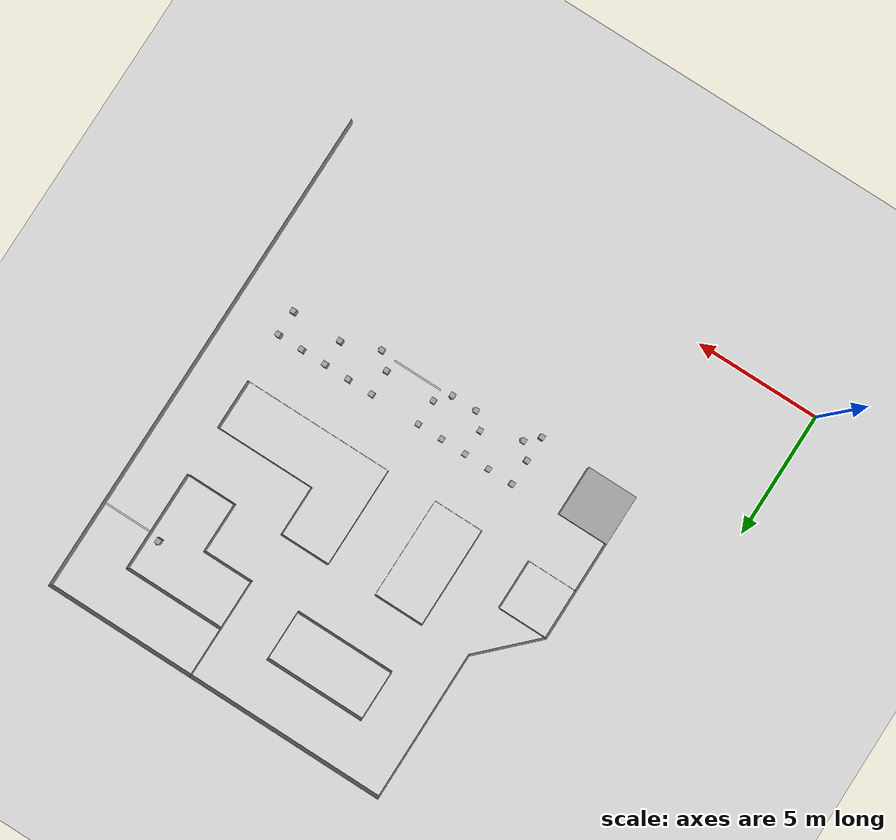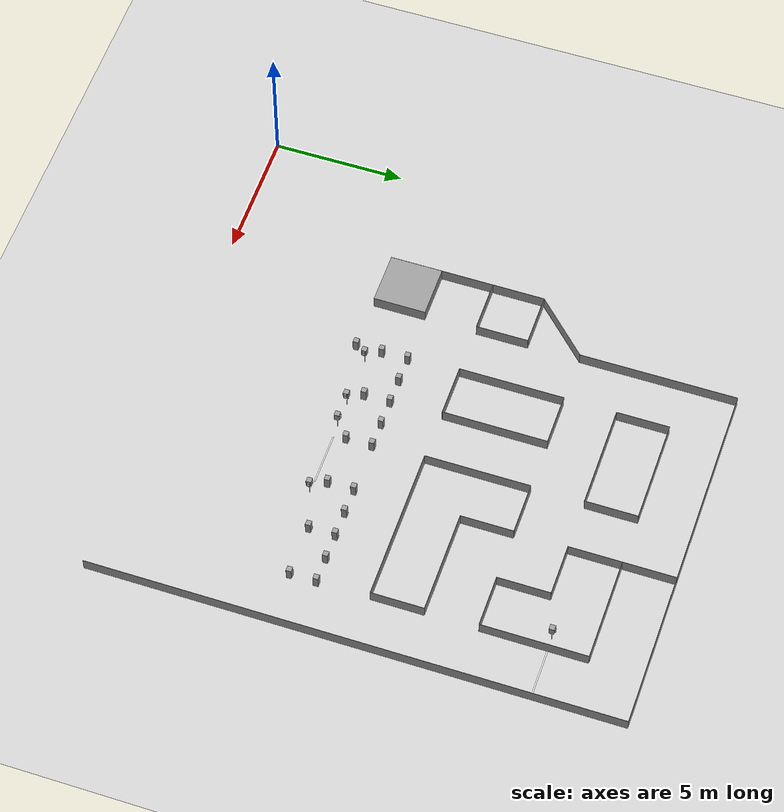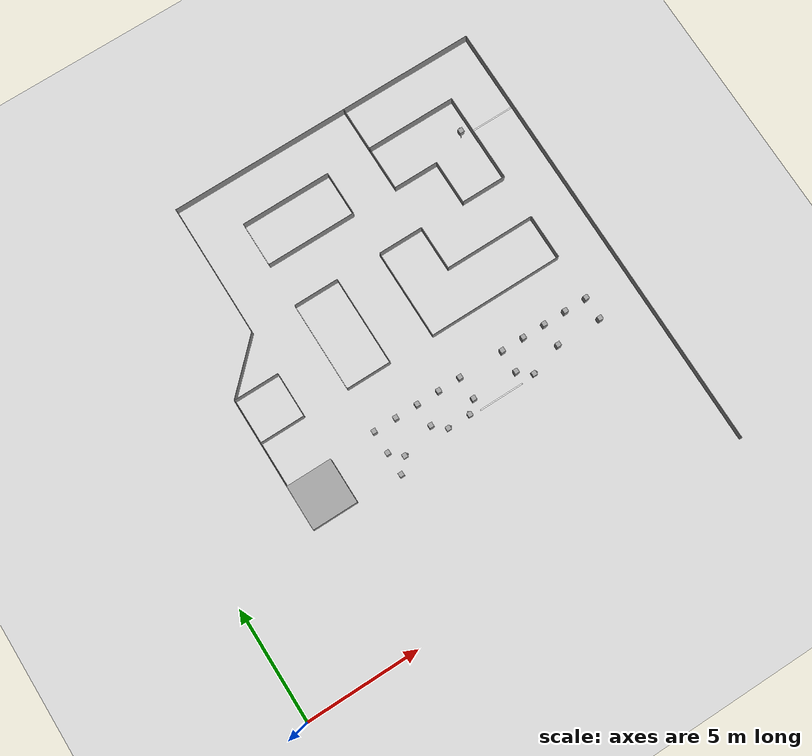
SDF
<sdf version="1.6">
 <world name="default">
  <model name="box_97">
   <pose>5.0 7.0 0.25 0 0 0</pose>
   <link name="link">
    <inertial>
     <mass>1</mass>
     <inertia><ixx>0</ixx><ixy>0</ixy><ixz>0</ixz><iyy>0</iyy><iyz>0</iyz><izz>0</izz></inertia>
    </inertial>
    <collision name="collision"><geometry><box><size>2.0 2.0 0.5</size></box></geometry></collision>
    <visual name="visual">
     <geometry><box><size>2.0 2.0 0.5</size></box></geometry>
     <material>
      <script><name>Gazebo/Grey</name><uri>file://media/materials/scripts/gazebo.material</uri></script>
     </material>
    </visual>
   </link>
   <static>1</static>
  </model>
  <model name="box_77">
   <pose>12.0 7.0 0.25 0 0 0</pose>
   <link name="link">
    <inertial>
     <mass>1</mass>
     <inertia><ixx>0</ixx><ixy>0</ixy><ixz>0</ixz><iyy>0</iyy><iyz>0</iyz><izz>0</izz></inertia>
    </inertial>
    <collision name="collision"><geometry><box><size>0.2 0.2 0.5</size></box></geometry></collision>
    <visual name="visual">
     <geometry><box><size>0.2 0.2 0.5</size></box></geometry>
     <material>
      <script><name>Gazebo/Grey</name><uri>file://media/materials/scripts/gazebo.material</uri></script>
     </material>
    </visual>
   </link>
   <static>1</static>
  </model>
  <model name="box_76">
   <pose>10.0 7.0 0.25 0 0 0</pose>
   <link name="link">
    <inertial>
     <mass>1</mass>
     <inertia><ixx>0</ixx><ixy>0</ixy><ixz>0</ixz><iyy>0</iyy><iyz>0</iyz><izz>0</izz></inertia>
    </inertial>
    <collision name="collision"><geometry><box><size>0.2 0.2 0.5</size></box></geometry></collision>
    <visual name="visual">
     <geometry><box><size>0.2 0.2 0.5</size></box></geometry>
     <material>
      <script><name>Gazebo/Grey</name><uri>file://media/materials/scripts/gazebo.material</uri></script>
     </material>
    </visual>
   </link>
   <static>1</static>
  </model>
  <model name="box_75">
   <pose>12.0 8.0 0.25 0 0 0</pose>
   <link name="link">
    <inertial>
     <mass>1</mass>
     <inertia><ixx>0</ixx><ixy>0</ixy><ixz>0</ixz><iyy>0</iyy><iyz>0</iyz><izz>0</izz></inertia>
    </inertial>
    <collision name="collision"><geometry><box><size>0.2 0.2 0.5</size></box></geometry></collision>
    <visual name="visual">
     <geometry><box><size>0.2 0.2 0.5</size></box></geometry>
     <material>
      <script><name>Gazebo/Grey</name><uri>file://media/materials/scripts/gazebo.material</uri></script>
     </material>
    </visual>
   </link>
   <static>1</static>
  </model>
  <model name="box_74">
   <pose>11.0 8.0 0.25 0 0 0</pose>
   <link name="link">
    <inertial>
     <mass>1</mass>
     <inertia><ixx>0</ixx><ixy>0</ixy><ixz>0</ixz><iyy>0</iyy><iyz>0</iyz><izz>0</izz></inertia>
    </inertial>
    <collision name="collision"><geometry><box><size>0.2 0.2 0.5</size></box></geometry></collision>
    <visual name="visual">
     <geometry><box><size>0.2 0.2 0.5</size></box></geometry>
     <material>
      <script><name>Gazebo/Grey</name><uri>file://media/materials/scripts/gazebo.material</uri></script>
     </material>
    </visual>
   </link>
   <static>1</static>
  </model>
  <model name="box_73">
   <pose>10.0 8.0 0.25 0 0 0</pose>
   <link name="link">
    <inertial>
     <mass>1</mass>
     <inertia><ixx>0</ixx><ixy>0</ixy><ixz>0</ixz><iyy>0</iyy><iyz>0</iyz><izz>0</izz></inertia>
    </inertial>
    <collision name="collision"><geometry><box><size>0.2 0.2 0.5</size></box></geometry></collision>
    <visual name="visual">
     <geometry><box><size>0.2 0.2 0.5</size></box></geometry>
     <material>
      <script><name>Gazebo/Grey</name><uri>file://media/materials/scripts/gazebo.material</uri></script>
     </material>
    </visual>
   </link>
   <static>1</static>
  </model>
  <model name="box_69">
   <pose>16.0 7.0 0.25 0 0 0</pose>
   <link name="link">
    <inertial>
     <mass>1</mass>
     <inertia><ixx>0</ixx><ixy>0</ixy><ixz>0</ixz><iyy>0</iyy><iyz>0</iyz><izz>0</izz></inertia>
    </inertial>
    <collision name="collision"><geometry><box><size>0.2 0.2 0.5</size></box></geometry></collision>
    <visual name="visual">
     <geometry><box><size>0.2 0.2 0.5</size></box></geometry>
     <material>
      <script><name>Gazebo/Grey</name><uri>file://media/materials/scripts/gazebo.material</uri></script>
     </material>
    </visual>
   </link>
   <static>1</static>
  </model>
  <model name="box_68">
   <pose>14.0 7.0 0.25 0 0 0</pose>
   <link name="link">
    <inertial>
     <mass>1</mass>
     <inertia><ixx>0</ixx><ixy>0</ixy><ixz>0</ixz><iyy>0</iyy><iyz>0</iyz><izz>0</izz></inertia>
    </inertial>
    <collision name="collision"><geometry><box><size>0.2 0.2 0.5</size></box></geometry></collision>
    <visual name="visual">
     <geometry><box><size>0.2 0.2 0.5</size></box></geometry>
     <material>
      <script><name>Gazebo/Grey</name><uri>file://media/materials/scripts/gazebo.material</uri></script>
     </material>
    </visual>
   </link>
   <static>1</static>
  </model>
  <model name="box_67">
   <pose>16.0 8.0 0.25 0 0 0</pose>
   <link name="link">
    <inertial>
     <mass>1</mass>
     <inertia><ixx>0</ixx><ixy>0</ixy><ixz>0</ixz><iyy>0</iyy><iyz>0</iyz><izz>0</izz></inertia>
    </inertial>
    <collision name="collision"><geometry><box><size>0.2 0.2 0.5</size></box></geometry></collision>
    <visual name="visual">
     <geometry><box><size>0.2 0.2 0.5</size></box></geometry>
     <material>
      <script><name>Gazebo/Grey</name><uri>file://media/materials/scripts/gazebo.material</uri></script>
     </material>
    </visual>
   </link>
   <static>1</static>
  </model>
  <model name="box_66">
   <pose>15.0 8.0 0.25 0 0 0</pose>
   <link name="link">
    <inertial>
     <mass>1</mass>
     <inertia><ixx>0</ixx><ixy>0</ixy><ixz>0</ixz><iyy>0</iyy><iyz>0</iyz><izz>0</izz></inertia>
    </inertial>
    <collision name="collision"><geometry><box><size>0.2 0.2 0.5</size></box></geometry></collision>
    <visual name="visual">
     <geometry><box><size>0.2 0.2 0.5</size></box></geometry>
     <material>
      <script><name>Gazebo/Grey</name><uri>file://media/materials/scripts/gazebo.material</uri></script>
     </material>
    </visual>
   </link>
   <static>1</static>
  </model>
  <model name="box_65">
   <pose>14.0 8.0 0.25 0 0 0</pose>
   <link name="link">
    <inertial>
     <mass>1</mass>
     <inertia><ixx>0</ixx><ixy>0</ixy><ixz>0</ixz><iyy>0</iyy><iyz>0</iyz><izz>0</izz></inertia>
    </inertial>
    <collision name="collision"><geometry><box><size>0.2 0.2 0.5</size></box></geometry></collision>
    <visual name="visual">
     <geometry><box><size>0.2 0.2 0.5</size></box></geometry>
     <material>
      <script><name>Gazebo/Grey</name><uri>file://media/materials/scripts/gazebo.material</uri></script>
     </material>
    </visual>
   </link>
   <static>1</static>
  </model>
  <model name="box_45">
   <pose>18.0 7.0 0.25 0 0 0</pose>
   <link name="link">
    <inertial>
     <mass>1</mass>
     <inertia><ixx>0</ixx><ixy>0</ixy><ixz>0</ixz><iyy>0</iyy><iyz>0</iyz><izz>0</izz></inertia>
    </inertial>
    <collision name="collision"><geometry><box><size>0.2 0.2 0.5</size></box></geometry></collision>
    <visual name="visual">
     <geometry><box><size>0.2 0.2 0.5</size></box></geometry>
     <material>
      <script><name>Gazebo/Grey</name><uri>file://media/materials/scripts/gazebo.material</uri></script>
     </material>
    </visual>
   </link>
   <static>1</static>
  </model>
  <model name="box_44">
   <pose>16.0 7.0 0.25 0 0 0</pose>
   <link name="link">
    <inertial>
     <mass>1</mass>
     <inertia><ixx>0</ixx><ixy>0</ixy><ixz>0</ixz><iyy>0</iyy><iyz>0</iyz><izz>0</izz></inertia>
    </inertial>
    <collision name="collision"><geometry><box><size>0.2 0.2 0.5</size></box></geometry></collision>
    <visual name="visual">
     <geometry><box><size>0.2 0.2 0.5</size></box></geometry>
     <material>
      <script><name>Gazebo/Grey</name><uri>file://media/materials/scripts/gazebo.material</uri></script>
     </material>
    </visual>
   </link>
   <static>1</static>
  </model>
  <model name="box_43">
   <pose>18.0 8.0 0.25 0 0 0</pose>
   <link name="link">
    <inertial>
     <mass>1</mass>
     <inertia><ixx>0</ixx><ixy>0</ixy><ixz>0</ixz><iyy>0</iyy><iyz>0</iyz><izz>0</izz></inertia>
    </inertial>
    <collision name="collision"><geometry><box><size>0.2 0.2 0.5</size></box></geometry></collision>
    <visual name="visual">
     <geometry><box><size>0.2 0.2 0.5</size></box></geometry>
     <material>
      <script><name>Gazebo/Grey</name><uri>file://media/materials/scripts/gazebo.material</uri></script>
     </material>
    </visual>
   </link>
   <static>1</static>
  </model>
  <model name="box_42">
   <pose>17.0 8.0 0.25 0 0 0</pose>
   <link name="link">
    <inertial>
     <mass>1</mass>
     <inertia><ixx>0</ixx><ixy>0</ixy><ixz>0</ixz><iyy>0</iyy><iyz>0</iyz><izz>0</izz></inertia>
    </inertial>
    <collision name="collision"><geometry><box><size>0.2 0.2 0.5</size></box></geometry></collision>
    <visual name="visual">
     <geometry><box><size>0.2 0.2 0.5</size></box></geometry>
     <material>
      <script><name>Gazebo/Grey</name><uri>file://media/materials/scripts/gazebo.material</uri></script>
     </material>
    </visual>
   </link>
   <static>1</static>
  </model>
  <model name="box_41">
   <pose>16.0 8.0 0.25 0 0 0</pose>
   <link name="link">
    <inertial>
     <mass>1</mass>
     <inertia><ixx>0</ixx><ixy>0</ixy><ixz>0</ixz><iyy>0</iyy><iyz>0</iyz><izz>0</izz></inertia>
    </inertial>
    <collision name="collision"><geometry><box><size>0.2 0.2 0.5</size></box></geometry></collision>
    <visual name="visual">
     <geometry><box><size>0.2 0.2 0.5</size></box></geometry>
     <material>
      <script><name>Gazebo/Grey</name><uri>file://media/materials/scripts/gazebo.material</uri></script>
     </material>
    </visual>
   </link>
   <static>1</static>
  </model>
  <model name="box_38">
   <pose>8.0 6.0 0.25 0 0 0</pose>
   <link name="link">
    <inertial>
     <mass>1</mass>
     <inertia><ixx>0</ixx><ixy>0</ixy><ixz>0</ixz><iyy>0</iyy><iyz>0</iyz><izz>0</izz></inertia>
    </inertial>
    <collision name="collision"><geometry><box><size>0.2 0.2 0.5</size></box></geometry></collision>
    <visual name="visual">
     <geometry><box><size>0.2 0.2 0.5</size></box></geometry>
     <material>
      <script><name>Gazebo/Grey</name><uri>file://media/materials/scripts/gazebo.material</uri></script>
     </material>
    </visual>
   </link>
   <static>1</static>
  </model>
  <model name="box_37">
   <pose>10.0 7.0 0.25 0 0 0</pose>
   <link name="link">
    <inertial>
     <mass>1</mass>
     <inertia><ixx>0</ixx><ixy>0</ixy><ixz>0</ixz><iyy>0</iyy><iyz>0</iyz><izz>0</izz></inertia>
    </inertial>
    <collision name="collision"><geometry><box><size>0.2 0.2 0.5</size></box></geometry></collision>
    <visual name="visual">
     <geometry><box><size>0.2 0.2 0.5</size></box></geometry>
     <material>
      <script><name>Gazebo/Grey</name><uri>file://media/materials/scripts/gazebo.material</uri></script>
     </material>
    </visual>
   </link>
   <static>1</static>
  </model>
  <model name="box_36">
   <pose>8.0 7.0 0.25 0 0 0</pose>
   <link name="link">
    <inertial>
     <mass>1</mass>
     <inertia><ixx>0</ixx><ixy>0</ixy><ixz>0</ixz><iyy>0</iyy><iyz>0</iyz><izz>0</izz></inertia>
    </inertial>
    <collision name="collision"><geometry><box><size>0.2 0.2 0.5</size></box></geometry></collision>
    <visual name="visual">
     <geometry><box><size>0.2 0.2 0.5</size></box></geometry>
     <material>
      <script><name>Gazebo/Grey</name><uri>file://media/materials/scripts/gazebo.material</uri></script>
     </material>
    </visual>
   </link>
   <static>1</static>
  </model>
  <model name="box_35">
   <pose>10.0 8.0 0.25 0 0 0</pose>
   <link name="link">
    <inertial>
     <mass>1</mass>
     <inertia><ixx>0</ixx><ixy>0</ixy><ixz>0</ixz><iyy>0</iyy><iyz>0</iyz><izz>0</izz></inertia>
    </inertial>
    <collision name="collision"><geometry><box><size>0.2 0.2 0.5</size></box></geometry></collision>
    <visual name="visual">
     <geometry><box><size>0.2 0.2 0.5</size></box></geometry>
     <material>
      <script><name>Gazebo/Grey</name><uri>file://media/materials/scripts/gazebo.material</uri></script>
     </material>
    </visual>
   </link>
   <static>1</static>
  </model>
  <model name="box_34">
   <pose>9.0 8.0 0.25 0 0 0</pose>
   <link name="link">
    <inertial>
     <mass>1</mass>
     <inertia><ixx>0</ixx><ixy>0</ixy><ixz>0</ixz><iyy>0</iyy><iyz>0</iyz><izz>0</izz></inertia>
    </inertial>
    <collision name="collision"><geometry><box><size>0.2 0.2 0.5</size></box></geometry></collision>
    <visual name="visual">
     <geometry><box><size>0.2 0.2 0.5</size></box></geometry>
     <material>
      <script><name>Gazebo/Grey</name><uri>file://media/materials/scripts/gazebo.material</uri></script>
     </material>
    </visual>
   </link>
   <static>1</static>
  </model>
  <model name="box_33">
   <pose>8.0 8.0 0.25 0 0 0</pose>
   <link name="link">
    <inertial>
     <mass>1</mass>
     <inertia><ixx>0</ixx><ixy>0</ixy><ixz>0</ixz><iyy>0</iyy><iyz>0</iyz><izz>0</izz></inertia>
    </inertial>
    <collision name="collision"><geometry><box><size>0.2 0.2 0.5</size></box></geometry></collision>
    <visual name="visual">
     <geometry><box><size>0.2 0.2 0.5</size></box></geometry>
     <material>
      <script><name>Gazebo/Grey</name><uri>file://media/materials/scripts/gazebo.material</uri></script>
     </material>
    </visual>
   </link>
   <static>1</static>
  </model>
  <model name="box_32">
   <pose>5.0 10.0 0.25 0 0 -0.0</pose>
   <link name="link">
    <inertial>
     <mass>1</mass>
     <inertia><ixx>0</ixx><ixy>0</ixy><ixz>0</ixz><iyy>0</iyy><iyz>0</iyz><izz>0</izz></inertia>
    </inertial>
    <collision name="collision"><geometry><box><size>2.0 0.01 0.5</size></box></geometry></collision>
    <visual name="visual">
     <geometry><box><size>2.0 0.01 0.5</size></box></geometry>
     <material>
      <script><name>Gazebo/Grey</name><uri>file://media/materials/scripts/gazebo.material</uri></script>
     </material>
    </visual>
   </link>
   <static>1</static>
  </model>
  <model name="box_31">
   <pose>6.0 11.0 0.25 0 0 1.5707963267948966</pose>
   <link name="link">
    <inertial>
     <mass>1</mass>
     <inertia><ixx>0</ixx><ixy>0</ixy><ixz>0</ixz><iyy>0</iyy><iyz>0</iyz><izz>0</izz></inertia>
    </inertial>
    <collision name="collision"><geometry><box><size>2.0 0.01 0.5</size></box></geometry></collision>
    <visual name="visual">
     <geometry><box><size>2.0 0.01 0.5</size></box></geometry>
     <material>
      <script><name>Gazebo/Grey</name><uri>file://media/materials/scripts/gazebo.material</uri></script>
     </material>
    </visual>
   </link>
   <static>1</static>
  </model>
  <model name="box_30">
   <pose>5.0 12.0 0.25 0 0 -3.141592653589793</pose>
   <link name="link">
    <inertial>
     <mass>1</mass>
     <inertia><ixx>0</ixx><ixy>0</ixy><ixz>0</ixz><iyy>0</iyy><iyz>0</iyz><izz>0</izz></inertia>
    </inertial>
    <collision name="collision"><geometry><box><size>2.0 0.01 0.5</size></box></geometry></collision>
    <visual name="visual">
     <geometry><box><size>2.0 0.01 0.5</size></box></geometry>
     <material>
      <script><name>Gazebo/Grey</name><uri>file://media/materials/scripts/gazebo.material</uri></script>
     </material>
    </visual>
   </link>
   <static>1</static>
  </model>
  <model name="box_29">
   <pose>10.0 18.0 0.25 0 0 -0.0</pose>
   <link name="link">
    <inertial>
     <mass>1</mass>
     <inertia><ixx>0</ixx><ixy>0</ixy><ixz>0</ixz><iyy>0</iyy><iyz>0</iyz><izz>0</izz></inertia>
    </inertial>
    <collision name="collision"><geometry><box><size>4.0 0.01 0.5</size></box></geometry></collision>
    <visual name="visual">
     <geometry><box><size>4.0 0.01 0.5</size></box></geometry>
     <material>
      <script><name>Gazebo/Grey</name><uri>file://media/materials/scripts/gazebo.material</uri></script>
     </material>
    </visual>
   </link>
   <static>1</static>
  </model>
  <model name="box_28">
   <pose>12.0 17.0 0.25 0 0 -1.5707963267948966</pose>
   <link name="link">
    <inertial>
     <mass>1</mass>
     <inertia><ixx>0</ixx><ixy>0</ixy><ixz>0</ixz><iyy>0</iyy><iyz>0</iyz><izz>0</izz></inertia>
    </inertial>
    <collision name="collision"><geometry><box><size>2.0 0.01 0.5</size></box></geometry></collision>
    <visual name="visual">
     <geometry><box><size>2.0 0.01 0.5</size></box></geometry>
     <material>
      <script><name>Gazebo/Grey</name><uri>file://media/materials/scripts/gazebo.material</uri></script>
     </material>
    </visual>
   </link>
   <static>1</static>
  </model>
  <model name="box_27">
   <pose>10.0 16.0 0.25 0 0 -3.141592653589793</pose>
   <link name="link">
    <inertial>
     <mass>1</mass>
     <inertia><ixx>0</ixx><ixy>0</ixy><ixz>0</ixz><iyy>0</iyy><iyz>0</iyz><izz>0</izz></inertia>
    </inertial>
    <collision name="collision"><geometry><box><size>4.0 0.01 0.5</size></box></geometry></collision>
    <visual name="visual">
     <geometry><box><size>4.0 0.01 0.5</size></box></geometry>
     <material>
      <script><name>Gazebo/Grey</name><uri>file://media/materials/scripts/gazebo.material</uri></script>
     </material>
    </visual>
   </link>
   <static>1</static>
  </model>
  <model name="box_26">
   <pose>8.0 17.0 0.25 0 0 1.5707963267948966</pose>
   <link name="link">
    <inertial>
     <mass>1</mass>
     <inertia><ixx>0</ixx><ixy>0</ixy><ixz>0</ixz><iyy>0</iyy><iyz>0</iyz><izz>0</izz></inertia>
    </inertial>
    <collision name="collision"><geometry><box><size>2.0 0.01 0.5</size></box></geometry></collision>
    <visual name="visual">
     <geometry><box><size>2.0 0.01 0.5</size></box></geometry>
     <material>
      <script><name>Gazebo/Grey</name><uri>file://media/materials/scripts/gazebo.material</uri></script>
     </material>
    </visual>
   </link>
   <static>1</static>
  </model>
  <model name="box_25">
   <pose>9.0 14.0 0.25 0 0 -0.0</pose>
   <link name="link">
    <inertial>
     <mass>1</mass>
     <inertia><ixx>0</ixx><ixy>0</ixy><ixz>0</ixz><iyy>0</iyy><iyz>0</iyz><izz>0</izz></inertia>
    </inertial>
    <collision name="collision"><geometry><box><size>2.0 0.01 0.5</size></box></geometry></collision>
    <visual name="visual">
     <geometry><box><size>2.0 0.01 0.5</size></box></geometry>
     <material>
      <script><name>Gazebo/Grey</name><uri>file://media/materials/scripts/gazebo.material</uri></script>
     </material>
    </visual>
   </link>
   <static>1</static>
  </model>
  <model name="box_24">
   <pose>10.0 12.0 0.25 0 0 -1.5707963267948966</pose>
   <link name="link">
    <inertial>
     <mass>1</mass>
     <inertia><ixx>0</ixx><ixy>0</ixy><ixz>0</ixz><iyy>0</iyy><iyz>0</iyz><izz>0</izz></inertia>
    </inertial>
    <collision name="collision"><geometry><box><size>4.0 0.01 0.5</size></box></geometry></collision>
    <visual name="visual">
     <geometry><box><size>4.0 0.01 0.5</size></box></geometry>
     <material>
      <script><name>Gazebo/Grey</name><uri>file://media/materials/scripts/gazebo.material</uri></script>
     </material>
    </visual>
   </link>
   <static>1</static>
  </model>
  <model name="box_23">
   <pose>9.0 10.0 0.25 0 0 -3.141592653589793</pose>
   <link name="link">
    <inertial>
     <mass>1</mass>
     <inertia><ixx>0</ixx><ixy>0</ixy><ixz>0</ixz><iyy>0</iyy><iyz>0</iyz><izz>0</izz></inertia>
    </inertial>
    <collision name="collision"><geometry><box><size>2.0 0.01 0.5</size></box></geometry></collision>
    <visual name="visual">
     <geometry><box><size>2.0 0.01 0.5</size></box></geometry>
     <material>
      <script><name>Gazebo/Grey</name><uri>file://media/materials/scripts/gazebo.material</uri></script>
     </material>
    </visual>
   </link>
   <static>1</static>
  </model>
  <model name="box_22">
   <pose>8.0 12.0 0.25 0 0 1.5707963267948966</pose>
   <link name="link">
    <inertial>
     <mass>1</mass>
     <inertia><ixx>0</ixx><ixy>0</ixy><ixz>0</ixz><iyy>0</iyy><iyz>0</iyz><izz>0</izz></inertia>
    </inertial>
    <collision name="collision"><geometry><box><size>4.0 0.01 0.5</size></box></geometry></collision>
    <visual name="visual">
     <geometry><box><size>4.0 0.01 0.5</size></box></geometry>
     <material>
      <script><name>Gazebo/Grey</name><uri>file://media/materials/scripts/gazebo.material</uri></script>
     </material>
    </visual>
   </link>
   <static>1</static>
  </model>
  <model name="box_21">
   <pose>13.0 14.0 0.25 0 0 -0.0</pose>
   <link name="link">
    <inertial>
     <mass>1</mass>
     <inertia><ixx>0</ixx><ixy>0</ixy><ixz>0</ixz><iyy>0</iyy><iyz>0</iyz><izz>0</izz></inertia>
    </inertial>
    <collision name="collision"><geometry><box><size>2.0 0.01 0.5</size></box></geometry></collision>
    <visual name="visual">
     <geometry><box><size>2.0 0.01 0.5</size></box></geometry>
     <material>
      <script><name>Gazebo/Grey</name><uri>file://media/materials/scripts/gazebo.material</uri></script>
     </material>
    </visual>
   </link>
   <static>1</static>
  </model>
  <model name="box_20">
   <pose>14.0 13.0 0.25 0 0 -1.5707963267948966</pose>
   <link name="link">
    <inertial>
     <mass>1</mass>
     <inertia><ixx>0</ixx><ixy>0</ixy><ixz>0</ixz><iyy>0</iyy><iyz>0</iyz><izz>0</izz></inertia>
    </inertial>
    <collision name="collision"><geometry><box><size>2.0 0.01 0.5</size></box></geometry></collision>
    <visual name="visual">
     <geometry><box><size>2.0 0.01 0.5</size></box></geometry>
     <material>
      <script><name>Gazebo/Grey</name><uri>file://media/materials/scripts/gazebo.material</uri></script>
     </material>
    </visual>
   </link>
   <static>1</static>
  </model>
  <model name="box_19">
   <pose>16.0 12.0 0.25 0 0 -0.0</pose>
   <link name="link">
    <inertial>
     <mass>1</mass>
     <inertia><ixx>0</ixx><ixy>0</ixy><ixz>0</ixz><iyy>0</iyy><iyz>0</iyz><izz>0</izz></inertia>
    </inertial>
    <collision name="collision"><geometry><box><size>4.0 0.01 0.5</size></box></geometry></collision>
    <visual name="visual">
     <geometry><box><size>4.0 0.01 0.5</size></box></geometry>
     <material>
      <script><name>Gazebo/Grey</name><uri>file://media/materials/scripts/gazebo.material</uri></script>
     </material>
    </visual>
   </link>
   <static>1</static>
  </model>
  <model name="box_18">
   <pose>18.0 11.0 0.25 0 0 -1.5707963267948966</pose>
   <link name="link">
    <inertial>
     <mass>1</mass>
     <inertia><ixx>0</ixx><ixy>0</ixy><ixz>0</ixz><iyy>0</iyy><iyz>0</iyz><izz>0</izz></inertia>
    </inertial>
    <collision name="collision"><geometry><box><size>2.0 0.01 0.5</size></box></geometry></collision>
    <visual name="visual">
     <geometry><box><size>2.0 0.01 0.5</size></box></geometry>
     <material>
      <script><name>Gazebo/Grey</name><uri>file://media/materials/scripts/gazebo.material</uri></script>
     </material>
    </visual>
   </link>
   <static>1</static>
  </model>
  <model name="box_17">
   <pose>15.0 10.0 0.25 0 0 -3.141592653589793</pose>
   <link name="link">
    <inertial>
     <mass>1</mass>
     <inertia><ixx>0</ixx><ixy>0</ixy><ixz>0</ixz><iyy>0</iyy><iyz>0</iyz><izz>0</izz></inertia>
    </inertial>
    <collision name="collision"><geometry><box><size>6.0 0.01 0.5</size></box></geometry></collision>
    <visual name="visual">
     <geometry><box><size>6.0 0.01 0.5</size></box></geometry>
     <material>
      <script><name>Gazebo/Grey</name><uri>file://media/materials/scripts/gazebo.material</uri></script>
     </material>
    </visual>
   </link>
   <static>1</static>
  </model>
  <model name="box_16">
   <pose>12.0 12.0 0.25 0 0 1.5707963267948966</pose>
   <link name="link">
    <inertial>
     <mass>1</mass>
     <inertia><ixx>0</ixx><ixy>0</ixy><ixz>0</ixz><iyy>0</iyy><iyz>0</iyz><izz>0</izz></inertia>
    </inertial>
    <collision name="collision"><geometry><box><size>4.0 0.01 0.5</size></box></geometry></collision>
    <visual name="visual">
     <geometry><box><size>4.0 0.01 0.5</size></box></geometry>
     <material>
      <script><name>Gazebo/Grey</name><uri>file://media/materials/scripts/gazebo.material</uri></script>
     </material>
    </visual>
   </link>
   <static>1</static>
  </model>
  <model name="box_15">
   <pose>16.0 18.0 0.25 0 0 -0.0</pose>
   <link name="link">
    <inertial>
     <mass>1</mass>
     <inertia><ixx>0</ixx><ixy>0</ixy><ixz>0</ixz><iyy>0</iyy><iyz>0</iyz><izz>0</izz></inertia>
    </inertial>
    <collision name="collision"><geometry><box><size>4.0 0.01 0.5</size></box></geometry></collision>
    <visual name="visual">
     <geometry><box><size>4.0 0.01 0.5</size></box></geometry>
     <material>
      <script><name>Gazebo/Grey</name><uri>file://media/materials/scripts/gazebo.material</uri></script>
     </material>
    </visual>
   </link>
   <static>1</static>
  </model>
  <model name="box_14">
   <pose>18.0 16.0 0.25 0 0 -1.5707963267948966</pose>
   <link name="link">
    <inertial>
     <mass>1</mass>
     <inertia><ixx>0</ixx><ixy>0</ixy><ixz>0</ixz><iyy>0</iyy><iyz>0</iyz><izz>0</izz></inertia>
    </inertial>
    <collision name="collision"><geometry><box><size>4.0 0.01 0.5</size></box></geometry></collision>
    <visual name="visual">
     <geometry><box><size>4.0 0.01 0.5</size></box></geometry>
     <material>
      <script><name>Gazebo/Grey</name><uri>file://media/materials/scripts/gazebo.material</uri></script>
     </material>
    </visual>
   </link>
   <static>1</static>
  </model>
  <model name="box_13">
   <pose>17.0 14.0 0.25 0 0 -3.141592653589793</pose>
   <link name="link">
    <inertial>
     <mass>1</mass>
     <inertia><ixx>0</ixx><ixy>0</ixy><ixz>0</ixz><iyy>0</iyy><iyz>0</iyz><izz>0</izz></inertia>
    </inertial>
    <collision name="collision"><geometry><box><size>2.0 0.01 0.5</size></box></geometry></collision>
    <visual name="visual">
     <geometry><box><size>2.0 0.01 0.5</size></box></geometry>
     <material>
      <script><name>Gazebo/Grey</name><uri>file://media/materials/scripts/gazebo.material</uri></script>
     </material>
    </visual>
   </link>
   <static>1</static>
  </model>
  <model name="box_12">
   <pose>16.0 15.0 0.25 0 0 1.5707963267948966</pose>
   <link name="link">
    <inertial>
     <mass>1</mass>
     <inertia><ixx>0</ixx><ixy>0</ixy><ixz>0</ixz><iyy>0</iyy><iyz>0</iyz><izz>0</izz></inertia>
    </inertial>
    <collision name="collision"><geometry><box><size>2.0 0.01 0.5</size></box></geometry></collision>
    <visual name="visual">
     <geometry><box><size>2.0 0.01 0.5</size></box></geometry>
     <material>
      <script><name>Gazebo/Grey</name><uri>file://media/materials/scripts/gazebo.material</uri></script>
     </material>
    </visual>
   </link>
   <static>1</static>
  </model>
  <model name="box_11">
   <pose>15.0 16.0 0.25 0 0 -3.141592653589793</pose>
   <link name="link">
    <inertial>
     <mass>1</mass>
     <inertia><ixx>0</ixx><ixy>0</ixy><ixz>0</ixz><iyy>0</iyy><iyz>0</iyz><izz>0</izz></inertia>
    </inertial>
    <collision name="collision"><geometry><box><size>2.0 0.01 0.5</size></box></geometry></collision>
    <visual name="visual">
     <geometry><box><size>2.0 0.01 0.5</size></box></geometry>
     <material>
      <script><name>Gazebo/Grey</name><uri>file://media/materials/scripts/gazebo.material</uri></script>
     </material>
    </visual>
   </link>
   <static>1</static>
  </model>
  <model name="box_10">
   <pose>14.0 17.0 0.25 0 0 1.5707963267948966</pose>
   <link name="link">
    <inertial>
     <mass>1</mass>
     <inertia><ixx>0</ixx><ixy>0</ixy><ixz>0</ixz><iyy>0</iyy><iyz>0</iyz><izz>0</izz></inertia>
    </inertial>
    <collision name="collision"><geometry><box><size>2.0 0.01 0.5</size></box></geometry></collision>
    <visual name="visual">
     <geometry><box><size>2.0 0.01 0.5</size></box></geometry>
     <material>
      <script><name>Gazebo/Grey</name><uri>file://media/materials/scripts/gazebo.material</uri></script>
     </material>
    </visual>
   </link>
   <static>1</static>
  </model>
  <model name="box_9">
   <pose>17.0 20.0 0.25 0 0 -0.0</pose>
   <link name="link">
    <inertial>
     <mass>1</mass>
     <inertia><ixx>0</ixx><ixy>0</ixy><ixz>0</ixz><iyy>0</iyy><iyz>0</iyz><izz>0</izz></inertia>
    </inertial>
    <collision name="collision"><geometry><box><size>6.0 0.01 0.5</size></box></geometry></collision>
    <visual name="visual">
     <geometry><box><size>6.0 0.01 0.5</size></box></geometry>
     <material>
      <script><name>Gazebo/Grey</name><uri>file://media/materials/scripts/gazebo.material</uri></script>
     </material>
    </visual>
   </link>
   <static>1</static>
  </model>
  <model name="box_8">
   <pose>20.0 10.0 0.25 0 0 -1.5707963267948966</pose>
   <link name="link">
    <inertial>
     <mass>1</mass>
     <inertia><ixx>0</ixx><ixy>0</ixy><ixz>0</ixz><iyy>0</iyy><iyz>0</iyz><izz>0</izz></inertia>
    </inertial>
    <collision name="collision"><geometry><box><size>20.0 0.01 0.5</size></box></geometry></collision>
    <visual name="visual">
     <geometry><box><size>20.0 0.01 0.5</size></box></geometry>
     <material>
      <script><name>Gazebo/Grey</name><uri>file://media/materials/scripts/gazebo.material</uri></script>
     </material>
    </visual>
   </link>
   <static>1</static>
  </model>
  <model name="box_6">
   <pose>10.0 20.0 0.25 0 0 -3.141592653589793</pose>
   <link name="link">
    <inertial>
     <mass>1</mass>
     <inertia><ixx>0</ixx><ixy>0</ixy><ixz>0</ixz><iyy>0</iyy><iyz>0</iyz><izz>0</izz></inertia>
    </inertial>
    <collision name="collision"><geometry><box><size>8.0 0.01 0.5</size></box></geometry></collision>
    <visual name="visual">
     <geometry><box><size>8.0 0.01 0.5</size></box></geometry>
     <material>
      <script><name>Gazebo/Grey</name><uri>file://media/materials/scripts/gazebo.material</uri></script>
     </material>
    </visual>
   </link>
   <static>1</static>
  </model>
  <model name="box_5">
   <pose>14.0 19.0 0.25 0 0 1.5707963267948966</pose>
   <link name="link">
    <inertial>
     <mass>1</mass>
     <inertia><ixx>0</ixx><ixy>0</ixy><ixz>0</ixz><iyy>0</iyy><iyz>0</iyz><izz>0</izz></inertia>
    </inertial>
    <collision name="collision"><geometry><box><size>2.0 0.01 0.5</size></box></geometry></collision>
    <visual name="visual">
     <geometry><box><size>2.0 0.01 0.5</size></box></geometry>
     <material>
      <script><name>Gazebo/Grey</name><uri>file://media/materials/scripts/gazebo.material</uri></script>
     </material>
    </visual>
   </link>
   <static>1</static>
  </model>
  <model name="box_3">
   <pose>6.0 17.0 0.25 0 0 -1.5707963267948966</pose>
   <link name="link">
    <inertial>
     <mass>1</mass>
     <inertia><ixx>0</ixx><ixy>0</ixy><ixz>0</ixz><iyy>0</iyy><iyz>0</iyz><izz>0</izz></inertia>
    </inertial>
    <collision name="collision"><geometry><box><size>6.0 0.01 0.5</size></box></geometry></collision>
    <visual name="visual">
     <geometry><box><size>6.0 0.01 0.5</size></box></geometry>
     <material>
      <script><name>Gazebo/Grey</name><uri>file://media/materials/scripts/gazebo.material</uri></script>
     </material>
    </visual>
   </link>
   <static>1</static>
  </model>
  <model name="box_2">
   <pose>5.0 13.0 0.25 0 0 -2.356194490192345</pose>
   <link name="link">
    <inertial>
     <mass>1</mass>
     <inertia><ixx>0</ixx><ixy>0</ixy><ixz>0</ixz><iyy>0</iyy><iyz>0</iyz><izz>0</izz></inertia>
    </inertial>
    <collision name="collision">
     <geometry><box><size>2.8284271247461903 0.01 0.5</size></box></geometry>
    </collision>
    <visual name="visual">
     <geometry><box><size>2.8284271247461903 0.01 0.5</size></box></geometry>
     <material>
      <script><name>Gazebo/Grey</name><uri>file://media/materials/scripts/gazebo.material</uri></script>
     </material>
    </visual>
   </link>
   <static>1</static>
  </model>
  <model name="box_1">
   <pose>4.0 9.0 0.25 0 0 -1.5707963267948966</pose>
   <link name="link">
    <inertial>
     <mass>1</mass>
     <inertia><ixx>0</ixx><ixy>0</ixy><ixz>0</ixz><iyy>0</iyy><iyz>0</iyz><izz>0</izz></inertia>
    </inertial>
    <collision name="collision"><geometry><box><size>6.0 0.01 0.5</size></box></geometry></collision>
    <visual name="visual">
     <geometry><box><size>6.0 0.01 0.5</size></box></geometry>
     <material>
      <script><name>Gazebo/Grey</name><uri>file://media/materials/scripts/gazebo.material</uri></script>
     </material>
    </visual>
   </link>
   <static>1</static>
  </model>
  <model name="tl_line_7">
   <static>1</static>
   <pose>13.0 6.5 0.001 0 0 3.141592653589793</pose>
   <link name="link">
    <collision name="collision">
     <geometry><plane><normal>0 0 1</normal><size>2.0 0.05</size></plane></geometry>
     <surface><friction><ode><mu>100</mu><mu2>50</mu2></ode></friction></surface>
    </collision>
    <visual name="visual">
     <geometry><plane><normal>0 0 1</normal><size>2.0 0.05</size></plane></geometry>
     <material>
      <script><name>Gazebo/White</name><uri>file://media/materials/scripts/gazebo.material</uri></script>
     </material>
    </visual>
   </link>
  </model>
  <include>
   <uri>model://traffic-light</uri>
   <name>traffic_light_7</name>
   <pose>11.5 6.5 0 0 0 3.141592653589793</pose>
  </include>
  <include>
   <uri>model://traffic-light</uri>
   <name>traffic_light_6</name>
   <pose>14.5 6.5 0 0 0 1.5707963267948966</pose>
  </include>
  <include>
   <uri>model://traffic-light</uri>
   <name>traffic_light_5</name>
   <pose>10.5 6.5 0 0 0 1.5707963267948966</pose>
  </include>
  <include>
   <uri>model://traffic-light</uri>
   <name>traffic_light_4</name>
   <pose>8.5 6.5 0 0 0 1.5707963267948966</pose>
  </include>
  <model name="tl_line_0">
   <static>1</static>
   <pose>19.0 16.5 0.001 0 0 3.141592653589793</pose>
   <link name="link">
    <collision name="collision">
     <geometry><plane><normal>0 0 1</normal><size>2.0 0.05</size></plane></geometry>
     <surface><friction><ode><mu>100</mu><mu2>50</mu2></ode></friction></surface>
    </collision>
    <visual name="visual">
     <geometry><plane><normal>0 0 1</normal><size>2.0 0.05</size></plane></geometry>
     <material>
      <script><name>Gazebo/White</name><uri>file://media/materials/scripts/gazebo.material</uri></script>
     </material>
    </visual>
   </link>
  </model>
  <include>
   <uri>model://traffic-light</uri>
   <name>traffic_light_0</name>
   <pose>17.5 16.5 0 0 0 3.141592653589793</pose>
  </include>
  <model name="ground_plane">
   <static>1</static>
   <link name="link">
    <collision name="collision">
     <geometry><plane><normal>0 0 1</normal><size>100 100</size></plane></geometry>
     <surface>
      <contact><collide_bitmask>65535</collide_bitmask></contact>
      <friction><ode><mu>100</mu><mu2>50</mu2></ode></friction>
     </surface>
    </collision>
    <visual name="visual">
     <cast_shadows>0</cast_shadows>
     <geometry><plane><normal>0 0 1</normal><size>100 100</size></plane></geometry>
     <material>
      <script><uri>file://media/materials/scripts/gazebo.material</uri><name>Gazebo/Grey</name></script>
     </material>
    </visual>
   </link>
  </model>
 </world>
</sdf>
